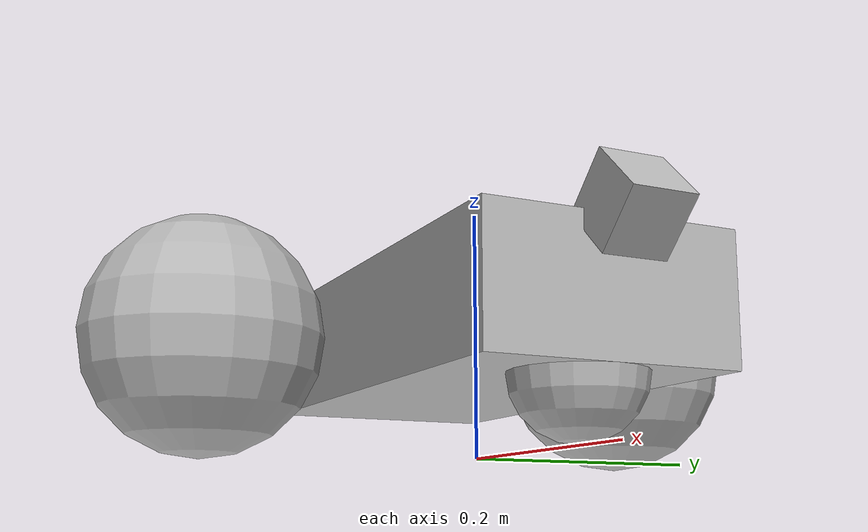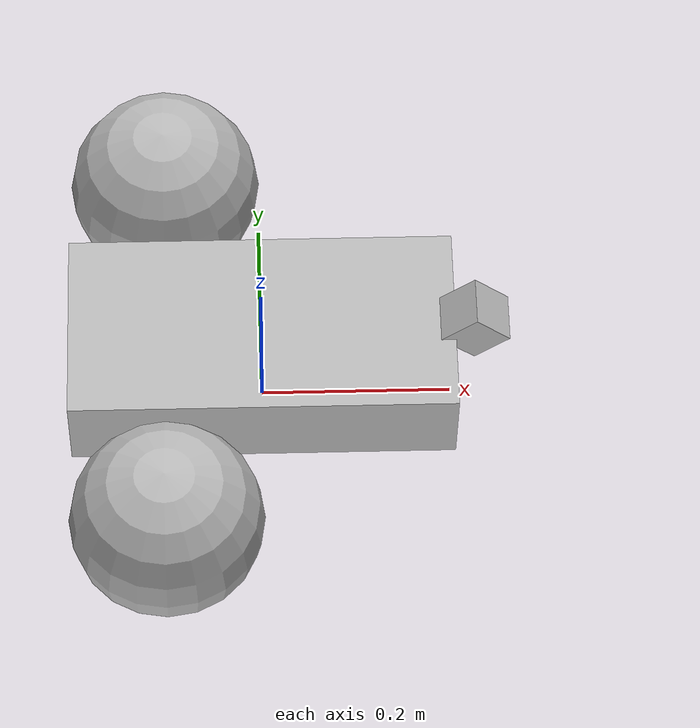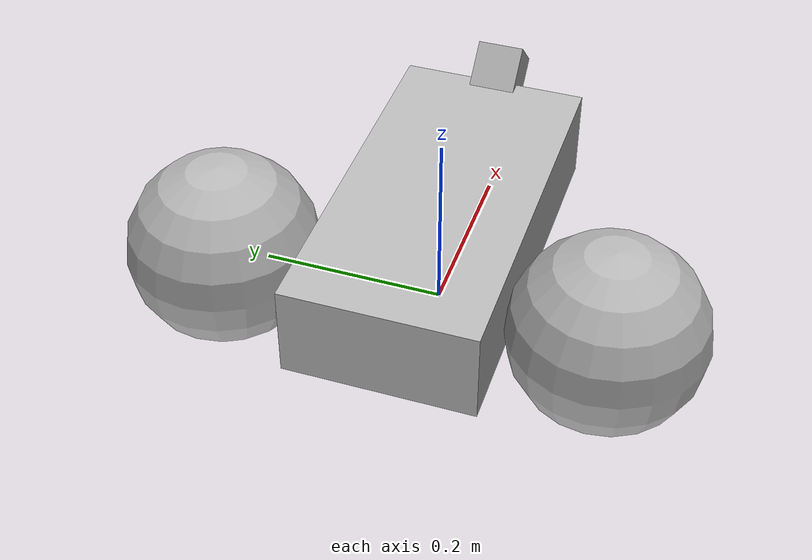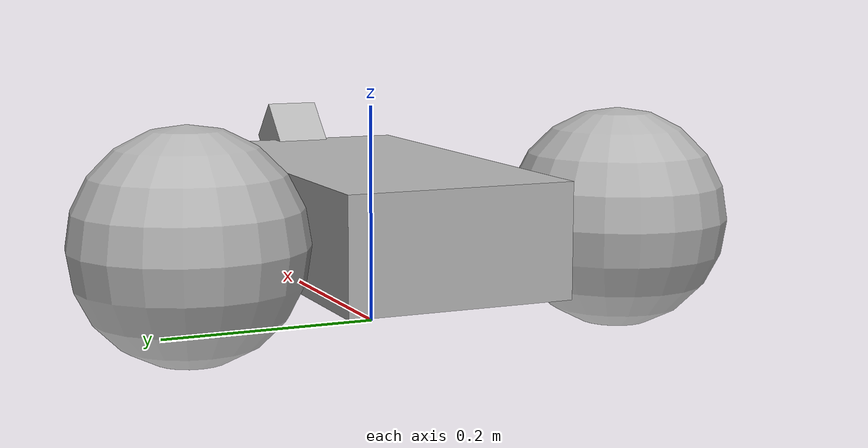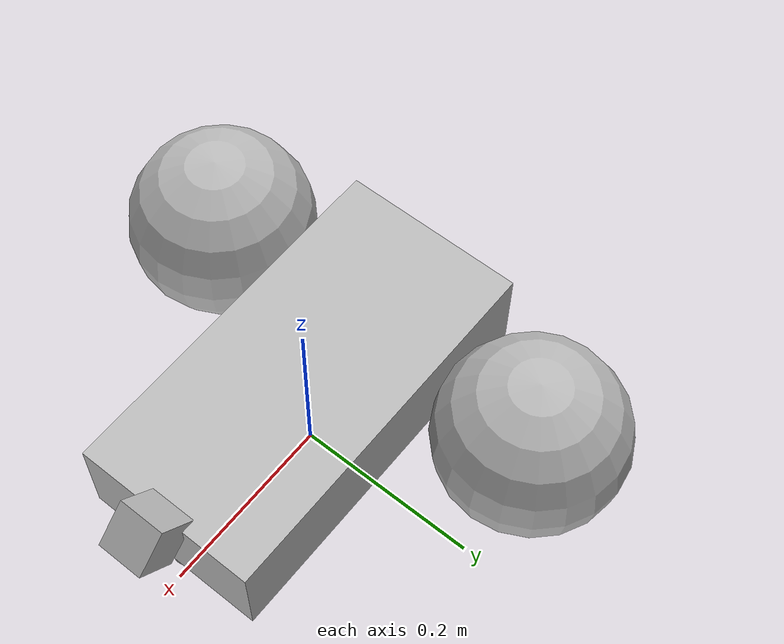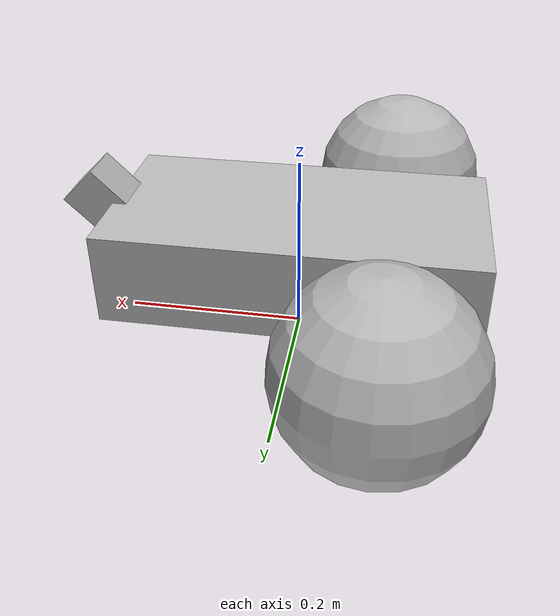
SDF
<?xml version='1.0'?>
<sdf version='1.5'>
  <model name="qt_pi_rgb">
    <link name='chassis'>

      <pose>0 0 0.1 0 0 0</pose>

      <inertial>
         <mass>20</mass>
         <pose>0.10 0 -0.05 0 0 0</pose>
      </inertial>

      <collision name='collision'>
        <geometry>
          <box>
            <size>.4 .2 .1</size>
          </box>
        </geometry>
      </collision>

      <visual name='visual'>
        <geometry>
          <box>
            <size>.4 .2 .1</size>
          </box>
        </geometry>
      </visual>

      <collision name='caster_collision'>
        <pose>0.15 0 -0.05 0 0 0</pose>
        <geometry>
          <sphere>
            <radius>.05</radius>
          </sphere>
        </geometry>

      <surface>
      <bounce>
        <restitution_coefficient>0.0</restitution_coefficient>
        <threshold>0.01</threshold>
      </bounce>
      <contact>
        <ode>
          <max_vel>0</max_vel>
          <min_depth>0.001</min_depth>
        </ode>
      </contact>
          <friction>
            <ode>
              <mu>0</mu>
              <mu2>0</mu2>
              <slip1>1.0</slip1>
              <slip2>1.0</slip2>
            </ode>
          </friction>
        </surface>
      </collision>

      <visual name='caster_visual'>
        <pose>0.15 0 -0.05 0 0 0</pose>
        <geometry>
          <sphere>
            <radius>.05</radius>
          </sphere>
        </geometry>
      </visual>
    </link>

    <link name="left_wheel">
      <pose>-0.1 0.2 0.1 0 0 0</pose>
              <inertial>
            <mass>5</mass>
        </inertial>
      <collision name="collision">
      <surface>
       <friction>
        <ode>
          <mu>10</mu>
          <mu2>10</mu2>
        </ode>
      </friction>
      <bounce>
        <restitution_coefficient>0.0</restitution_coefficient>
        <threshold>0.01</threshold>
      </bounce>
      <contact>
        <ode>
          <max_vel>0</max_vel>
          <min_depth>0.001</min_depth>
        </ode>
      </contact>
    </surface>
        <geometry>
    <sphere>
            <radius>.1</radius>
          </sphere>
        </geometry>
      </collision>
      <visual name="visual">
        <geometry>
    <sphere>
            <radius>.1</radius>
          </sphere>
        </geometry>
      </visual>
    </link>

    <link name="right_wheel">
      <pose>-0.1 -0.2 0.1 0 0 0</pose>
              <inertial>
            <mass>5</mass>
        </inertial>
      <collision name="collision">

      <surface>
       <friction>
        <ode>
          <mu>10</mu>
          <mu2>10</mu2>
        </ode>
      </friction>
      <bounce>
        <restitution_coefficient>0.0</restitution_coefficient>
        <threshold>0.01</threshold>
      </bounce>
      <contact>
        <ode>
          <max_vel>0</max_vel>
          <min_depth>0.001</min_depth>
        </ode>
      </contact>
    </surface>

        <geometry>
        <sphere>
            <radius>.1</radius>
          </sphere>
        </geometry>
      </collision>
      <visual name="visual">
        <geometry>
          <sphere>
            <radius>.1</radius>
          </sphere>
        </geometry>
      </visual>
    </link>
    <joint type="revolute" name="left_wheel_hinge">
      <pose>0 0 0 0 0 0</pose>
      <child>left_wheel</child>
      <parent>chassis</parent>
      <axis>
        <xyz>0 1 0</xyz>
      </axis>
    </joint>

    <joint type="revolute" name="right_wheel_hinge">
      <pose>0 0 0 0 0 0</pose>
      <child>right_wheel</child>
      <parent>chassis</parent>
      <axis>
        <xyz>0 1 0</xyz>
      </axis>
    </joint>

    <link name='cam_link'>

      <pose>0.22 0 0.15 0 0.785 0</pose>

      <inertial>
         <mass>0.0001</mass>
      </inertial>

      <collision name='cam_collision'>
        <geometry>
          <box>
            <size>.05 .05 .05</size>
          </box>
        </geometry>
      </collision>

      <visual name='cam_visual'>
        <geometry>
          <box>
            <size>.05 .05 .05</size>
          </box>
        </geometry>
      </visual>

    <sensor name="camera" type="camera">
      <camera>
        <horizontal_fov>1.3962634</horizontal_fov>
        <image>
          <width>648</width>
          <height>488</height>
          <format>R8G8B8</format>
        </image>
        <clip>
          <near>0.02</near>
          <far>300</far>
        </clip>
        <noise>
          <type>gaussian</type>
          <!-- Noise is sampled independently per pixel on each frame.
               That pixel's noise value is added to each of its color
               channels, which at that point lie in the range [0,1]. -->
          <mean>0.0</mean>
          <stddev>0.007</stddev>
        </noise>
      </camera>
      <plugin name="camera_controller" filename="libgazebo_ros_camera.so">
        <alwaysOn>true</alwaysOn>
        <updateRate>0.0</updateRate>
        <cameraName>front_camera</cameraName>
        <imageTopicName>image_raw</imageTopicName>
        <cameraInfoTopicName>camera_info</cameraInfoTopicName>
        <frameName>camera_link</frameName>
        <hackBaseline>0.07</hackBaseline>
        <distortionK1>0.0</distortionK1>
        <distortionK2>0.0</distortionK2>
        <distortionK3>0.0</distortionK3>
        <distortionT1>0.0</distortionT1>
        <distortionT2>0.0</distortionT2>
      </plugin>
      </sensor>
        </link>

            <joint name="cam_joint" type="fixed">
      <child>cam_link</child>
      <parent>chassis</parent>
    </joint>

   <plugin name="differential_drive_controller" filename="libgazebo_ros_diff_drive.so">
      <alwaysOn>true</alwaysOn>
      <updateRate>30</updateRate>
      <leftJoint>left_wheel_hinge</leftJoint>
      <robotNamespace>qt_pi</robotNamespace>
      <rightJoint>right_wheel_hinge</rightJoint>
      <wheelSeparation>0.4</wheelSeparation>
      <wheelDiameter>0.2</wheelDiameter>
      <publishWheelTF>1</publishWheelTF>
      <wheelTorque>5</wheelTorque>
      <commandTopic>cmd_vel</commandTopic>
      <odometryTopic>odom</odometryTopic>
      <robotBaseFrame>base_link</robotBaseFrame>
      <odometryFrame>odom</odometryFrame>
      <publishTf>1</publishTf>
      <publishOdomTF>true</publishOdomTF>
      <rosDebugLevel>1</rosDebugLevel>
      <publishWheelJointState>false</publishWheelJointState>
      <wheelAcceleration>0</wheelAcceleration>
    </plugin>
  </model>
</sdf>
